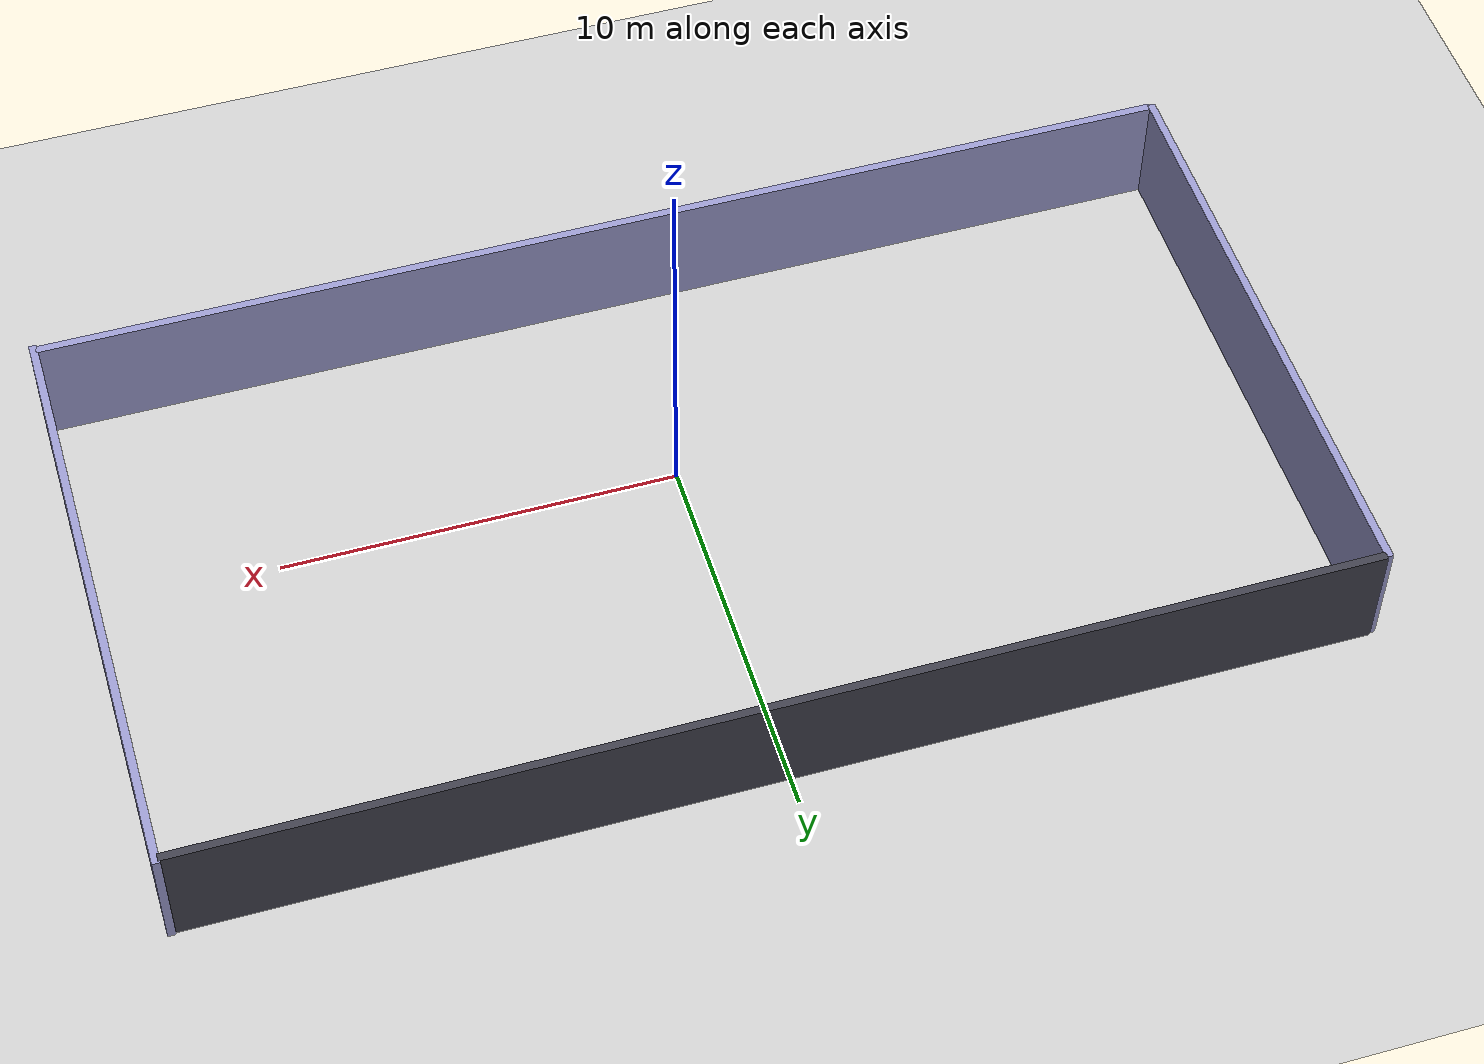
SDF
<sdf version="1.7">
 <world name="default">
  <plugin filename="libignition-gazebo-physics-system.so" name="ignition::gazebo::systems::Physics"/>
  <plugin filename="libignition-gazebo-scene-broadcaster-system.so" name="ignition::gazebo::systems::SceneBroadcaster"/>
  <plugin filename="libignition-gazebo-user-commands-system.so" name="ignition::gazebo::systems::UserCommands"/>
  <plugin filename="libignition-gazebo-sensors-system.so" name="ignition::gazebo::systems::Sensors">
   <render_engine>ogre</render_engine>
  </plugin>
  <plugin filename="libignition-gazebo-imu-system.so" name="ignition::gazebo::systems::Imu"/>
  <light type="directional" name="direct_light">
   <pose>7.4 3.6 10 0 0 0</pose>
   <diffuse>1.0 1.0 1.0 1</diffuse>
   <specular>0.5 0.5 0.5 1</specular>
   <attenuation>
    <range>1000</range>
    <constant>0.9</constant>
    <linear>0.01</linear>
    <quadratic>0.001</quadratic>
   </attenuation>
   <direction>0 0 -1</direction>
  </light>
  <model name="ground_plane">
   <static>true</static>
   <link name="link">
    <collision name="collision"><geometry><plane><normal>0 0 1</normal></plane></geometry></collision>
    <visual name="visual">
     <geometry><plane><normal>0 0 1</normal><size>100 100</size></plane></geometry>
     <material>
      <ambient>0.8 0.8 0.8 1</ambient>
      <diffuse>0.8 0.8 0.8 1</diffuse>
      <specular>0.8 0.8 0.8 1</specular>
     </material>
    </visual>
   </link>
  </model>
  <model name="wall_north">
   <static>true</static>
   <link name="link">
    <collision name="collision"><geometry><box><size>29.0 0.2 3.0</size></box></geometry></collision>
    <visual name="visual">
     <geometry><box><size>29.0 0.2 3.0</size></box></geometry>
     <material>
      <ambient>0.2 0.2 0.25 1</ambient>
      <diffuse>0.25 0.25 0.3 1</diffuse>
      <specular>0.7 0.7 0.8 1</specular>
      <shininess>64.0</shininess>
     </material>
    </visual>
   </link>
   <pose>0 9.25 1.5 0 0 0</pose>
  </model>
  <model name="wall_south">
   <static>true</static>
   <link name="link">
    <collision name="collision"><geometry><box><size>29.0 0.2 3.0</size></box></geometry></collision>
    <visual name="visual">
     <geometry><box><size>29.0 0.2 3.0</size></box></geometry>
     <material>
      <ambient>0.6 0.6 0.8 1</ambient>
      <diffuse>0.6 0.6 0.8 1</diffuse>
      <specular>0.2 0.2 0.3 1</specular>
     </material>
    </visual>
   </link>
   <pose>0 -5.95 1.5 0 0 0</pose>
  </model>
  <model name="wall_east">
   <static>true</static>
   <link name="link">
    <collision name="collision"><geometry><box><size>0.2 15.5 3.0</size></box></geometry></collision>
    <visual name="visual">
     <geometry><box><size>0.2 15.5 3.0</size></box></geometry>
     <material>
      <ambient>0.6 0.6 0.8 1</ambient>
      <diffuse>0.6 0.6 0.8 1</diffuse>
      <specular>0.2 0.2 0.3 1</specular>
     </material>
    </visual>
   </link>
   <pose>14.55 1.65 1.5 0 0 0</pose>
  </model>
  <model name="wall_west">
   <static>true</static>
   <link name="link">
    <collision name="collision"><geometry><box><size>0.2 15.3 3.0</size></box></geometry></collision>
    <visual name="visual">
     <geometry><box><size>0.2 15.3 3.0</size></box></geometry>
     <material>
      <ambient>0.6 0.6 0.8 1</ambient>
      <diffuse>0.6 0.6 0.8 1</diffuse>
      <specular>0.2 0.2 0.3 1</specular>
     </material>
    </visual>
   </link>
   <pose>-14.55 1.65 1.5 0 0 0</pose>
  </model>
 </world>
</sdf>
